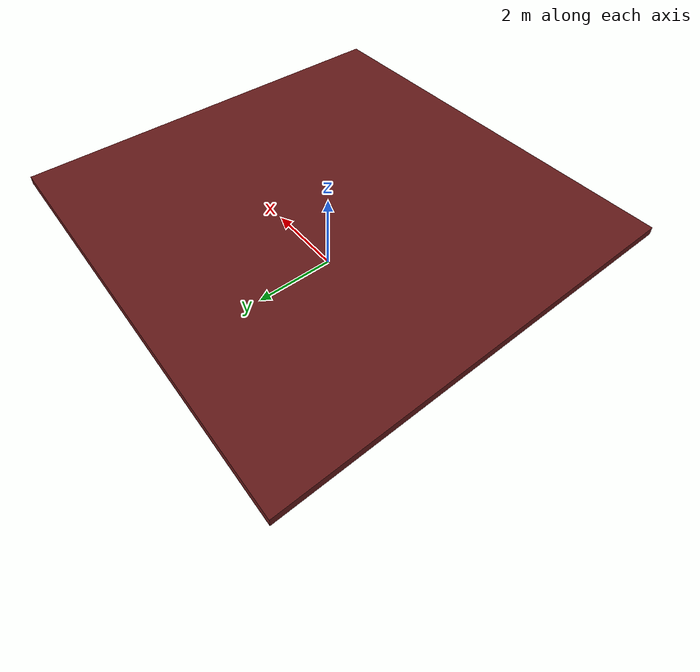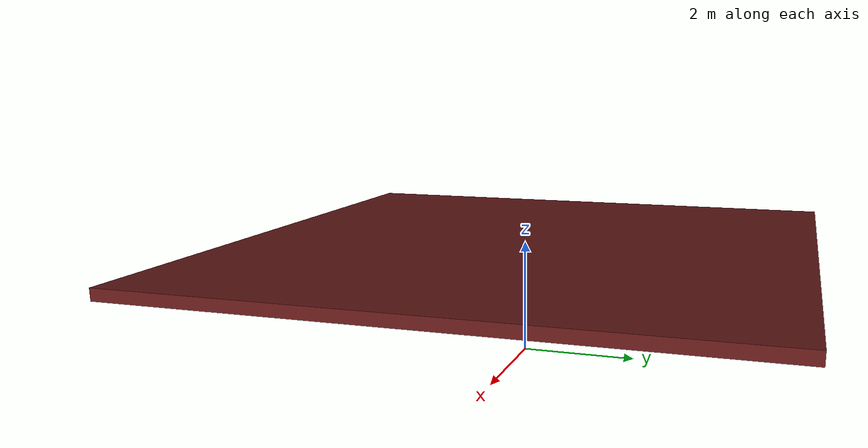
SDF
<?xml version="1.0"?>
<sdf version="1.9">
  <model name="raised_landing_surface_v95">
    <static>true</static>
    <pose>0 0 1.9 0 0 0</pose>
    <link name="pad">
      <collision name="pad_collision">
        <geometry><box><size>10 10 0.2</size></box></geometry>
      </collision>
      <visual name="pad_visual">
        <geometry><box><size>10 10 0.2</size></box></geometry>
        <material>
          <ambient>0.4 0.1 0.1 1</ambient>
          <diffuse>0.4 0.1 0.1 1</diffuse>
        </material>
      </visual>
    </link>
  </model>
</sdf>
